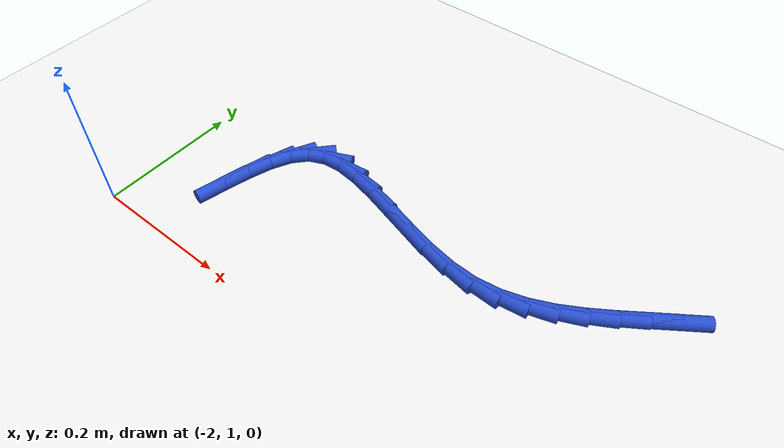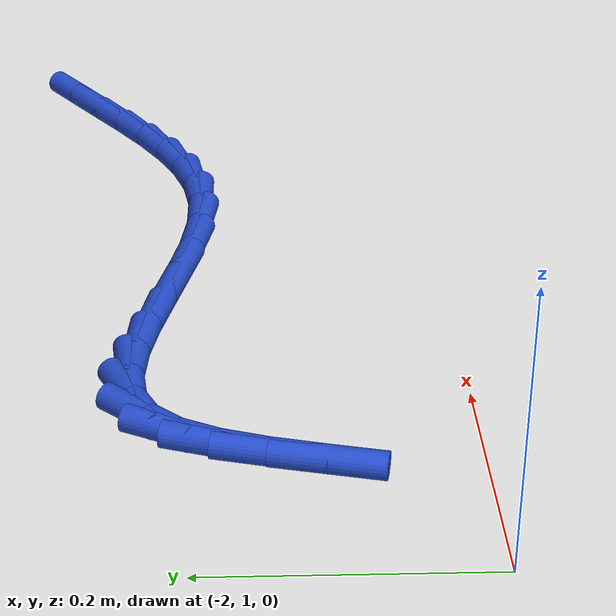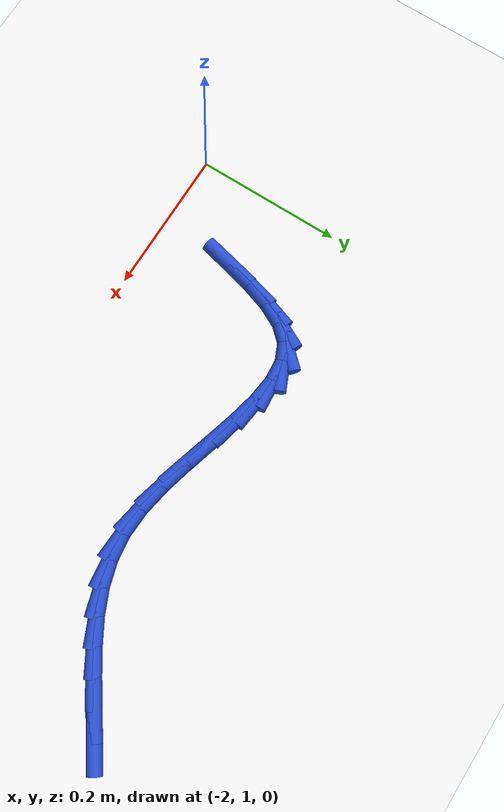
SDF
<sdf version="1.6">
 <world name="default">
  <model name="ground_plane">
   <static>1</static>
   <link name="link">
    <collision name="collision">
     <geometry><plane><normal>0 0 1</normal><size>100 100</size></plane></geometry>
     <surface><friction><ode><mu>100</mu><mu2>50</mu2></ode></friction></surface>
    </collision>
    <visual name="visual">
     <cast_shadows>0</cast_shadows>
     <geometry><plane><normal>0 0 1</normal><size>100 100</size></plane></geometry>
     <material>
      <script><uri>file://media/materials/scripts/gazebo.material</uri><name>Gazebo/WhiteGlow</name></script>
     </material>
    </visual>
   </link>
  </model>
  <model name="line">
   <link name="link_60">
    <pose>-1.3015810209856198 1.2924952755172494 0.01 0 1.57 0.604429371227333</pose>
    <collision name="collision">
     <geometry><cylinder><radius>0.01</radius><length>0.08</length></cylinder></geometry>
    </collision>
    <visual name="visual">
     <material>
      <script><name>Gazebo/Blue</name><uri>file://media/materials/scripts/gazebo.material</uri></script>
     </material>
     <geometry><cylinder><radius>0.01</radius><length>0.08</length></cylinder></geometry>
    </visual>
   </link>
   <link name="link_61">
    <pose>-1.3317669425361864 1.2716470933901327 0.01 0 1.57 0.6070470445274952</pose>
    <collision name="collision">
     <geometry><cylinder><radius>0.01</radius><length>0.08</length></cylinder></geometry>
    </collision>
    <visual name="visual">
     <material>
      <script><name>Gazebo/Blue</name><uri>file://media/materials/scripts/gazebo.material</uri></script>
     </material>
     <geometry><cylinder><radius>0.01</radius><length>0.08</length></cylinder></geometry>
    </visual>
   </link>
   <link name="link_62">
    <pose>-1.3616697969667328 1.2508785901926798 0.01 0 1.57 0.5785463176082106</pose>
    <collision name="collision">
     <geometry><cylinder><radius>0.01</radius><length>0.08</length></cylinder></geometry>
    </collision>
    <visual name="visual">
     <material>
      <script><name>Gazebo/Blue</name><uri>file://media/materials/scripts/gazebo.material</uri></script>
     </material>
     <geometry><cylinder><radius>0.01</radius><length>0.08</length></cylinder></geometry>
    </visual>
   </link>
   <link name="link_63">
    <pose>-1.3917308154721022 1.231245956801841 0.01 0 1.57 0.5171852335132712</pose>
    <collision name="collision">
     <geometry><cylinder><radius>0.01</radius><length>0.08</length></cylinder></geometry>
    </collision>
    <visual name="visual">
     <material>
      <script><name>Gazebo/Blue</name><uri>file://media/materials/scripts/gazebo.material</uri></script>
     </material>
     <geometry><cylinder><radius>0.01</radius><length>0.08</length></cylinder></geometry>
    </visual>
   </link>
   <link name="link_64">
    <pose>-1.422391229247139 1.213805384094568 0.01 0 1.57 0.42093343493927776</pose>
    <collision name="collision">
     <geometry><cylinder><radius>0.01</radius><length>0.08</length></cylinder></geometry>
    </collision>
    <visual name="visual">
     <material>
      <script><name>Gazebo/Blue</name><uri>file://media/materials/scripts/gazebo.material</uri></script>
     </material>
     <geometry><cylinder><radius>0.01</radius><length>0.08</length></cylinder></geometry>
    </visual>
   </link>
   <link name="link_65">
    <pose>-1.4540922694866878 1.199613062947811 0.01 0 1.57 0.2896036284409017</pose>
    <collision name="collision">
     <geometry><cylinder><radius>0.01</radius><length>0.08</length></cylinder></geometry>
    </collision>
    <visual name="visual">
     <material>
      <script><name>Gazebo/Blue</name><uri>file://media/materials/scripts/gazebo.material</uri></script>
     </material>
     <geometry><cylinder><radius>0.01</radius><length>0.08</length></cylinder></geometry>
    </visual>
   </link>
   <link name="link_66">
    <pose>-1.4872751673855924 1.1897251842385215 0.01 0 1.57 0.12825151749003735</pose>
    <collision name="collision">
     <geometry><cylinder><radius>0.01</radius><length>0.08</length></cylinder></geometry>
    </collision>
    <visual name="visual">
     <material>
      <script><name>Gazebo/Blue</name><uri>file://media/materials/scripts/gazebo.material</uri></script>
     </material>
     <geometry><cylinder><radius>0.01</radius><length>0.08</length></cylinder></geometry>
    </visual>
   </link>
   <link name="link_67">
    <pose>-1.522381154138697 1.18519793884365 0.01 0 1.57 -0.044268473617673894</pose>
    <collision name="collision">
     <geometry><cylinder><radius>0.01</radius><length>0.08</length></cylinder></geometry>
    </collision>
    <visual name="visual">
     <material>
      <script><name>Gazebo/Blue</name><uri>file://media/materials/scripts/gazebo.material</uri></script>
     </material>
     <geometry><cylinder><radius>0.01</radius><length>0.08</length></cylinder></geometry>
    </visual>
   </link>
   <link name="link_68">
    <pose>-1.559739697715166 1.1868528257116457 0.01 0 1.57 -0.1725425219237369</pose>
    <collision name="collision">
     <geometry><cylinder><radius>0.01</radius><length>0.08</length></cylinder></geometry>
    </collision>
    <visual name="visual">
     <material>
      <script><name>Gazebo/Blue</name><uri>file://media/materials/scripts/gazebo.material</uri></script>
     </material>
     <geometry><cylinder><radius>0.01</radius><length>0.08</length></cylinder></geometry>
    </visual>
   </link>
   <link name="link_69">
    <pose>-1.5987985487849108 1.1936598230237523 0.01 0 1.57 -0.24743539583194793</pose>
    <collision name="collision">
     <geometry><cylinder><radius>0.01</radius><length>0.08</length></cylinder></geometry>
    </collision>
    <visual name="visual">
     <material>
      <script><name>Gazebo/Blue</name><uri>file://media/materials/scripts/gazebo.material</uri></script>
     </material>
     <geometry><cylinder><radius>0.01</radius><length>0.08</length></cylinder></geometry>
    </visual>
   </link>
   <link name="link_70">
    <pose>-1.6385873632738015 1.203710950570347 0.01 0 1.57 -0.2802427581285492</pose>
    <collision name="collision">
     <geometry><cylinder><radius>0.01</radius><length>0.08</length></cylinder></geometry>
    </collision>
    <visual name="visual">
     <material>
      <script><name>Gazebo/Blue</name><uri>file://media/materials/scripts/gazebo.material</uri></script>
     </material>
     <geometry><cylinder><radius>0.01</radius><length>0.08</length></cylinder></geometry>
    </visual>
   </link>
   <link name="link_71">
    <pose>-1.6781332811901435 1.2150929449590648 0.01 0 1.57 -0.2746325489470267</pose>
    <collision name="collision">
     <geometry><cylinder><radius>0.01</radius><length>0.08</length></cylinder></geometry>
    </collision>
    <visual name="visual">
     <material>
      <script><name>Gazebo/Blue</name><uri>file://media/materials/scripts/gazebo.material</uri></script>
     </material>
     <geometry><cylinder><radius>0.01</radius><length>0.08</length></cylinder></geometry>
    </visual>
   </link>
   <link name="link_72">
    <pose>-1.716463442542243 1.225892542797542 0.01 0 1.57 -0.2258419207506762</pose>
    <collision name="collision">
     <geometry><cylinder><radius>0.01</radius><length>0.08</length></cylinder></geometry>
    </collision>
    <visual name="visual">
     <material>
      <script><name>Gazebo/Blue</name><uri>file://media/materials/scripts/gazebo.material</uri></script>
     </material>
     <geometry><cylinder><radius>0.01</radius><length>0.08</length></cylinder></geometry>
    </visual>
   </link>
   <link name="link_73">
    <pose>-1.7526049873384053 1.2341964806934145 0.01 0 1.57 -0.11755752719931227</pose>
    <collision name="collision">
     <geometry><cylinder><radius>0.01</radius><length>0.08</length></cylinder></geometry>
    </collision>
    <visual name="visual">
     <material>
      <script><name>Gazebo/Blue</name><uri>file://media/materials/scripts/gazebo.material</uri></script>
     </material>
     <geometry><cylinder><radius>0.01</radius><length>0.08</length></cylinder></geometry>
    </visual>
   </link>
   <link name="link_74">
    <pose>-1.7855850555869375 1.2380914952543183 0.01 0 1.57 0.08394545898831744</pose>
    <collision name="collision">
     <geometry><cylinder><radius>0.01</radius><length>0.08</length></cylinder></geometry>
    </collision>
    <visual name="visual">
     <material>
      <script><name>Gazebo/Blue</name><uri>file://media/materials/scripts/gazebo.material</uri></script>
     </material>
     <geometry><cylinder><radius>0.01</radius><length>0.08</length></cylinder></geometry>
    </visual>
   </link>
   <link name="link_75">
    <pose>-1.8144307872961454 1.2356643230878888 0.01 0 1.57 0.4219861446318538</pose>
    <collision name="collision">
     <geometry><cylinder><radius>0.01</radius><length>0.08</length></cylinder></geometry>
    </collision>
    <visual name="visual">
     <material>
      <script><name>Gazebo/Blue</name><uri>file://media/materials/scripts/gazebo.material</uri></script>
     </material>
     <geometry><cylinder><radius>0.01</radius><length>0.08</length></cylinder></geometry>
    </visual>
   </link>
   <link name="link_76">
    <pose>-1.8381718254165316 1.225005620214959 0.01 0 1.57 0.8246373609502704</pose>
    <collision name="collision">
     <geometry><cylinder><radius>0.01</radius><length>0.08</length></cylinder></geometry>
    </collision>
    <visual name="visual">
     <material>
      <script><name>Gazebo/Blue</name><uri>file://media/materials/scripts/gazebo.material</uri></script>
     </material>
     <geometry><cylinder><radius>0.01</radius><length>0.08</length></cylinder></geometry>
    </visual>
   </link>
   <link name="link_77">
    <pose>-1.8564760383482382 1.2052054541698352 0.01 0 1.57 1.099918561807085</pose>
    <collision name="collision">
     <geometry><cylinder><radius>0.01</radius><length>0.08</length></cylinder></geometry>
    </collision>
    <visual name="visual">
     <material>
      <script><name>Gazebo/Blue</name><uri>file://media/materials/scripts/gazebo.material</uri></script>
     </material>
     <geometry><cylinder><radius>0.01</radius><length>0.08</length></cylinder></geometry>
    </visual>
   </link>
   <link name="link_78">
    <pose>-1.8704921253684366 1.1776727586944515 0.01 0 1.57 1.2514619019285778</pose>
    <collision name="collision">
     <geometry><cylinder><radius>0.01</radius><length>0.08</length></cylinder></geometry>
    </collision>
    <visual name="visual">
     <material>
      <script><name>Gazebo/Blue</name><uri>file://media/materials/scripts/gazebo.material</uri></script>
     </material>
     <geometry><cylinder><radius>0.01</radius><length>0.08</length></cylinder></geometry>
    </visual>
   </link>
   <link name="link_79">
    <pose>-1.8815782720392384 1.1441445067921074 0.01 0 1.57 1.3241325582827062</pose>
    <collision name="collision">
     <geometry><cylinder><radius>0.01</radius><length>0.08</length></cylinder></geometry>
    </collision>
    <visual name="visual">
     <material>
      <script><name>Gazebo/Blue</name><uri>file://media/materials/scripts/gazebo.material</uri></script>
     </material>
     <geometry><cylinder><radius>0.01</radius><length>0.08</length></cylinder></geometry>
    </visual>
   </link>
   <link name="link_80">
    <pose>-1.8910926639227563 1.1063576714661014 0.01 0 1.57 1.3440240095532634</pose>
    <collision name="collision">
     <geometry><cylinder><radius>0.01</radius><length>0.08</length></cylinder></geometry>
    </collision>
    <visual name="visual">
     <material>
      <script><name>Gazebo/Blue</name><uri>file://media/materials/scripts/gazebo.material</uri></script>
     </material>
     <geometry><cylinder><radius>0.01</radius><length>0.08</length></cylinder></geometry>
    </visual>
   </link>
  </model>
 </world>
</sdf>
